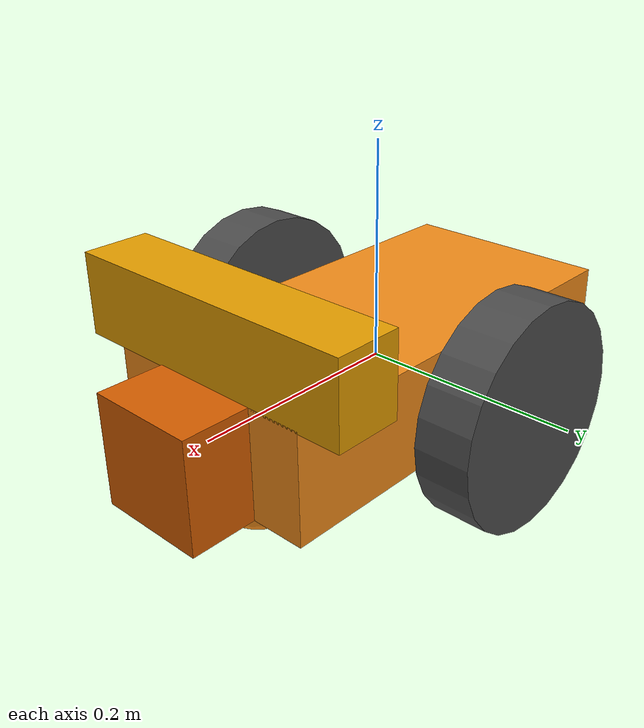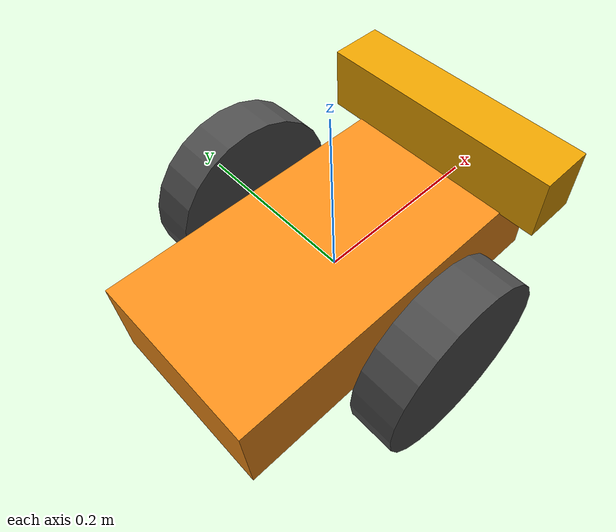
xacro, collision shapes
<?xml version="1.0" ?>
<robot name="wheel_bot" xmlns:xacro="http://www.ros.org/wiki/xacro">

  <!-- Define constants -->
  <xacro:property name="M_PI" value="3.1415926535897931" />

  <xacro:property name="robot_base_link" value="chassis" />

  <xacro:property name="caster_back_radius" value="0.0495" />
  <xacro:property name="caster_front_radius" value="0.05" />
  <xacro:property name="caster_offset_x" value="${base_length/2 - 0.05}" />
  <xacro:property name="caster_offset_y" value="0.0" />
  <xacro:property name="caster_offset_z" value="-${caster_front_radius}" />

  <xacro:property name="base_length" value="0.4" />
  <xacro:property name="base_width" value="0.2" />
  <xacro:property name="base_height" value="0.1" />
  <xacro:property name="base_mass" value="20.0" />
  <xacro:property name="base_ixx" value="${base_mass * (base_width*base_width + base_height*base_height) / 12.0}" />
  <xacro:property name="base_iyy" value="${base_mass * (base_length*base_length + base_height*base_height) / 12.0}" />
  <xacro:property name="base_izz" value="${base_mass * (base_length*base_length + base_width*base_height) / 12.0}" />

  <xacro:include filename="$(find slam_project)/urdf/wheel_bot.gazebo" />
  <xacro:include filename="$(find slam_project)/urdf/sensor.xacro" />
  <xacro:include filename="$(find slam_project)/urdf/wheels.xacro" />

  <!--Links-->
  <link name="base_footprint"></link>

  <joint name="base_footprint_joint" type="fixed">
    <origin xyz="0 0 0" rpy="0 0 0" />
    <parent link="base_footprint"/>
    <child link="${robot_base_link}" />
  </joint>

  <link name='${robot_base_link}'>
    <pose>0 0 0.1 0 0 0</pose>
    <inertial>
      <mass value="${base_mass}"/>
      <origin xyz="0 0 0" rpy=" 0 0 0"/>
      <inertia
        ixx="${base_ixx}" ixy="0" ixz="0"
        iyy="${base_iyy}" iyz="0"
        izz="${base_izz}" />
      </inertial>
    <collision>
      <origin xyz="0 0 0" rpy=" 0 0 0"/>
      <geometry>
        <box size="${base_length} ${base_width} ${base_height}"/>
      </geometry>
    </collision>
    <visual>
      <origin xyz="0 0 0" rpy=" 0 0 0"/>
      <geometry>
        <box size="${base_length} ${base_width} ${base_height}"/>
      </geometry>
    </visual>

    <collision name='back_caster_collision'>
      <origin xyz="${-caster_offset_x} ${caster_offset_y} ${caster_offset_z}" rpy=" 0 0 0"/>
      <geometry>
        <sphere radius="${caster_back_radius}"/>
      </geometry>
      <surface>
        <friction>
          <ode>
            <mu>0</mu>
            <mu2>0</mu2>
            <slip1>1.0</slip1>
            <slip2>1.0</slip2>
          </ode>
        </friction>
      </surface>
    </collision>
    <visual name='back_caster_visual'>
      <origin xyz="${-caster_offset_x} ${caster_offset_y} ${caster_offset_z}" rpy=" 0 0 0"/>
      <geometry>
        <sphere radius="${caster_back_radius}"/>
      </geometry>
    </visual>

    <collision name='front_caster_collision'>
      <origin xyz="${caster_offset_x} ${caster_offset_y} ${caster_offset_z}" rpy=" 0 0 0"/>
      <geometry>
        <sphere radius="${caster_front_radius}"/>
      </geometry>
      <surface>
        <friction>
          <ode>
            <mu>0</mu>
            <mu2>0</mu2>
            <slip1>1.0</slip1>
            <slip2>1.0</slip2>
          </ode>
        </friction>
      </surface>
    </collision>
    <visual name='front_caster_visual'>
      <origin xyz="${caster_offset_x} ${caster_offset_y} ${caster_offset_z}" rpy=" 0 0 0"/>
      <geometry>
        <sphere radius="${caster_front_radius}"/>
      </geometry>
    </visual>
  </link>

</robot>

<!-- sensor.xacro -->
<robot xmlns:xacro="http://www.ros.org/wiki/xacro">
  <!-- Define constants -->
  <xacro:property name="M_PI" value="3.1415926535897931" />
  <xacro:property name="parent_link" value="chassis" />

  <xacro:property name="kinect_offset_x" value="${base_length/2}" />
  <xacro:property name="kinect_offset_z" value="0.1" />
  <xacro:property name="laser_offset_x" value="${base_length/2 + 0.01}" />
  <xacro:property name="laser_offset_z" value="0" />

  <!-- RGBD camera -->
  <link name="camera_link">
  <collision>
    <origin xyz="-0.03 0 -0.015" rpy="0 0 0"/>
    <geometry>
      <box size="0.06 0.28 0.073"/>
    </geometry>
  </collision>
  <visual>
    <origin xyz="0 0 0" rpy="0 0 0"/>
    <geometry>
      <mesh filename="package://slam_project/meshes/kinect.dae"/>
    </geometry>
  </visual>
  <inertial>
    <mass value="0.4" />
    <origin xyz="0 0 0" rpy="0 0 0"/>
    <inertia ixx="1e-3" ixy="0" ixz="0" iyy="1e-3" iyz="0" izz="1e-3" />
  </inertial>
  </link>

  <link name="camera_rgb_frame" />

  <joint name="camera_link_joint" type="fixed">
    <origin rpy="0 0 0" xyz="${kinect_offset_x} 0 ${kinect_offset_z}" />
    <parent link="${parent_link}" />
    <child link="camera_link" />
  </joint>
  <joint name="camera_rgb_joint" type="fixed">
    <origin rpy="0 0 0" xyz="0 0.022 0" />
    <parent link="camera_link" />
    <child link="camera_rgb_frame" />
  </joint>
  <link name="camera_rgb_optical_frame" />
  <joint name="camera_rgb_optical_joint" type="fixed">
    <origin rpy="${-M_PI/2} 0 ${-M_PI/2}" xyz="0 0 0" />
    <parent link="camera_rgb_frame" />
    <child link="camera_rgb_optical_frame" />
  </joint>
  <link name="camera_depth_frame" />
  <joint name="camera_depth_joint" type="fixed">
    <origin rpy="0 0 0" xyz="0 0.049 0" />
    <parent link="camera_link" />
    <child link="camera_depth_frame" />
  </joint>
  <link name="camera_depth_optical_frame" />
  <joint name="camera_depth_optical_joint" type="fixed">
    <origin rpy="${-M_PI/2} 0 ${-M_PI/2}" xyz="0 0 0" />
    <parent link="camera_depth_frame" />
    <child link="camera_depth_optical_frame" />
  </joint>

  <!-- laser scanner -->
  <link name='hokuyo'>
    <pose>0 0 0 0 0 0</pose>
    <inertial>
      <mass value="0.1"/>
      <origin xyz="0 0 0" rpy=" 0 0 0"/>
      <inertia
          ixx="1e-6" ixy="0" ixz="0"
          iyy="1e-6" iyz="0"
          izz="1e-6" />
    </inertial>
    <collision name='hokuyo_collision'>
      <origin xyz="0 0 0" rpy=" 0 0 0"/>
      <geometry>
        <box size=".1 .1 .1"/>
      </geometry>
    </collision>
    <visual name='hokuyo_visual'>
      <origin xyz="0 0 0" rpy=" 0 0 0"/>
      <geometry>
        <mesh filename="package://slam_project/meshes/hokuyo.dae"/>
      </geometry>
    </visual>
  </link>

  <joint type="fixed" name="hokuyo_joint">
    <origin xyz="${laser_offset_x} 0 ${laser_offset_z}" rpy="0 0 0"/>
    <child link="hokuyo"/>
    <parent link="${parent_link}"/>
    <axis xyz="0 1 0" rpy="0 0 0"/>
    <limit effort="10000" velocity="1000"/>
    <joint_properties damping="1.0" friction="1.0"/>
  </joint>

</robot>

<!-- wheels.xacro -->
<robot xmlns:xacro="http://www.ros.org/wiki/xacro">
  <!-- Define constants -->
  <xacro:property name="M_PI" value="3.1415926535897931" />

  <xacro:property name="robot_base_link" value="chassis" />

  <xacro:property name="wheel_length" value="0.05" />
  <xacro:property name="wheel_radius" value="0.1" />
  <xacro:property name="wheel_mass" value="5" />
  <xacro:property name="wheel_offset_x" value="0" />
  <xacro:property name="wheel_offset_y" value="0.15" />
  <xacro:property name="wheel_ixx" value="${wheel_mass * (3.0*wheel_radius*wheel_radius + wheel_length*wheel_length) / 12.0}" />
  <xacro:property name="wheel_iyy" value="${wheel_mass * wheel_radius*wheel_radius / 2.0}" />
  <xacro:property name="wheel_izz" value="${wheel_ixx}" />

  <!-- Wheels -->
  <xacro:macro name="drive_wheel" params="suffix parent reflect">
    <link name="${parent}_${suffix}_wheel_link">
      <inertial>
        <mass value="${wheel_mass}"/>
        <origin xyz="0 0 0" rpy=" 0 ${M_PI/2.0} ${M_PI/2.0}"/>
        <inertia
          ixx="${wheel_ixx}" ixy="0" ixz="0"
          iyy="${wheel_iyy}" iyz="0"
          izz="${wheel_izz}" />
        </inertial>
      <collision>
        <origin xyz="0 0 0" rpy=" 0 ${M_PI/2.0} ${M_PI/2.0}"/>
        <geometry>
          <cylinder length="${wheel_length}" radius="${wheel_radius}"/>
        </geometry>
      </collision>
      <visual>
        <origin xyz="0 0 0" rpy=" 0 ${M_PI/2.0} ${M_PI/2.0}"/>
        <geometry>
          <cylinder length="${wheel_length}" radius="${wheel_radius}"/>
        </geometry>
      </visual>
    </link>

    <joint type="continuous" name="${suffix}_wheel_joint">
      <origin xyz="${wheel_offset_x} ${wheel_offset_y*reflect} 0" rpy="0 0 0"/>
      <child link="${parent}_${suffix}_wheel_link"/>
      <parent link="${parent}"/>
      <axis xyz="0 1 0" rpy="0 0 0"/>
      <limit effort="10000" velocity="1000"/>
      <joint_properties damping="1.0" friction="1.0"/>
    </joint>
  </xacro:macro>

  <xacro:drive_wheel parent="${parent_link}" suffix="left" reflect="-1" />
  <xacro:drive_wheel parent="${parent_link}" suffix="right" reflect="1" />

</robot>
